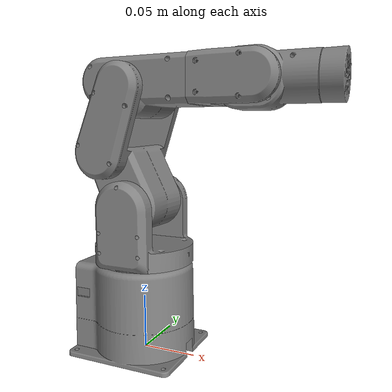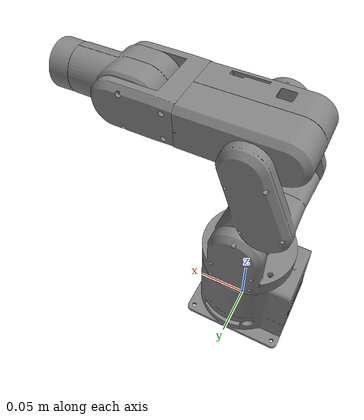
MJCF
<mujoco model="mecharm_pi">
  <compiler angle="radian" meshdir="meshes/"/>
  <size njmax="500" nconmax="100"/>
  <default/>
  <asset>
    <mesh name="base" file="base.stl" scale="0.001 0.001 0.001"/>
    <mesh name="link1" file="link1.stl" scale="0.001 0.001 0.001"/>
    <mesh name="link2" file="link2.stl" scale="0.001 0.001 0.001"/>
    <mesh name="link3" file="link3.stl" scale="0.001 0.001 0.001"/>
    <mesh name="link4" file="link4.stl" scale="0.001 0.001 0.001"/>
    <mesh name="link5" file="link5.stl" scale="0.001 0.001 0.001"/>
    <mesh name="link6" file="link6.stl" scale="0.001 0.001 0.001"/>
  </asset>
  <worldbody>
    <geom quat="2.67949e-08 0 0 -1" type="mesh" contype="0" conaffinity="0" group="1" density="0" mesh="base"/>
    <geom quat="2.67949e-08 0 0 -1" type="mesh" mesh="base"/>
    <body name="link1" pos="0 0 0.1">
      <joint name="joint1" pos="0 0 0" axis="0 0 1" limited="true" range="-2.79253 2.79253"/>
      <geom pos="0 0 -0.132" type="mesh" contype="0" conaffinity="0" group="1" density="0" mesh="link1"/>
      <geom pos="0 0 -0.132" type="mesh" mesh="link1"/>
      <body name="link2" pos="0 0 0.038" quat="0.707105 0.707108 0 0">
        <joint name="joint2" pos="0 0 0" axis="0 0 1" limited="true" range="-1.5708 1.5708"/>
        <geom pos="-0.005 -0.21 -0.002" quat="1.89468e-08 1.89469e-08 0.707108 0.707105" type="mesh" contype="0" conaffinity="0" group="1" density="0" mesh="link2"/>
        <geom pos="-0.005 -0.21 -0.002" quat="1.89468e-08 1.89469e-08 0.707108 0.707105" type="mesh" mesh="link2"/>
        <body name="link3" pos="0 0.1 0" quat="2.67949e-08 1 0 0">
          <joint name="joint3" pos="0 0 0" axis="0 0 1" limited="true" range="-3.08 0.785398"/>
          <geom pos="-0.09 0.306 0.005" quat="1.89468e-08 1.89469e-08 0.707105 -0.707108" type="mesh" contype="0" conaffinity="0" group="1" density="0" mesh="link3"/>
          <geom pos="-0.09 0.306 0.005" quat="1.89468e-08 1.89469e-08 0.707105 -0.707108" type="mesh" mesh="link3"/>
          <body name="link4" pos="0.108 -0.005 -0.001" quat="0.707105 0 0.707108 0">
            <joint name="joint4" pos="0 0 0" axis="0 0 1" limited="true" range="-2.79253 2.79253"/>
            <geom pos="0.009 -0.311 -0.228" quat="0.499998 -0.500002 0.5 0.5" type="mesh" contype="0" conaffinity="0" group="1" density="0" mesh="link4"/>
            <geom pos="0.009 -0.311 -0.228" quat="0.499998 -0.500002 0.5 0.5" type="mesh" mesh="link4"/>
            <body name="link5" pos="-0.001 0 0" quat="1.89468e-08 0.707108 -1.89469e-08 0.707105">
              <joint name="joint5" pos="0 0 0" axis="0 0 1" limited="true" range="-1.74533 1.74533"/>
              <geom pos="-0.292 -0.318 -0.009" quat="1.89468e-08 1.89469e-08 0.707108 0.707105" type="mesh" contype="0" conaffinity="0" group="1" density="0" mesh="link5"/>
              <geom pos="-0.292 -0.318 -0.009" quat="1.89468e-08 1.89469e-08 0.707108 0.707105" type="mesh" mesh="link5"/>
              <body name="link6" pos="0.06 0 0" quat="0.707105 0 0.707108 0">
                <joint name="joint6" pos="0 0 0" axis="0 0 1" limited="true" range="-3.14 3.14"/>
                <geom pos="-0.1625 0.0536 -0.211" quat="0.707105 0 0.707108 0" type="mesh" contype="0" conaffinity="0" group="1" density="0" mesh="link6"/>
                <geom pos="-0.1625 0.0536 -0.211" quat="0.707105 0 0.707108 0" type="mesh" mesh="link6"/>
              </body>
            </body>
          </body>
        </body>
      </body>
    </body>
  </worldbody>
</mujoco>
